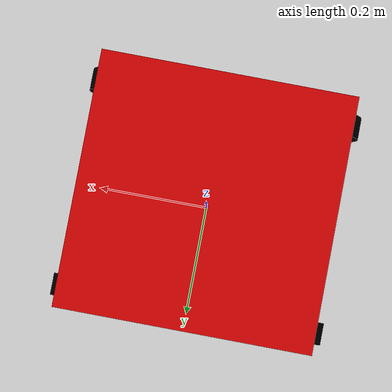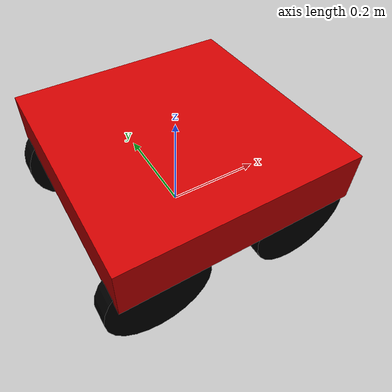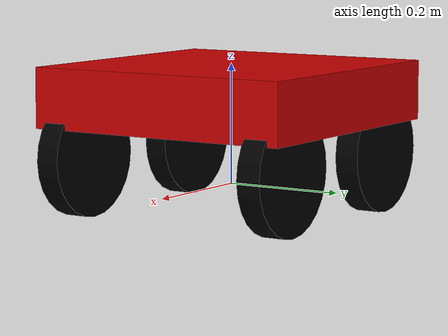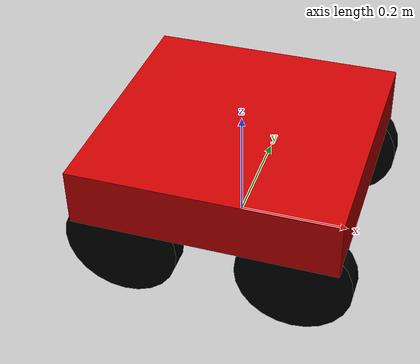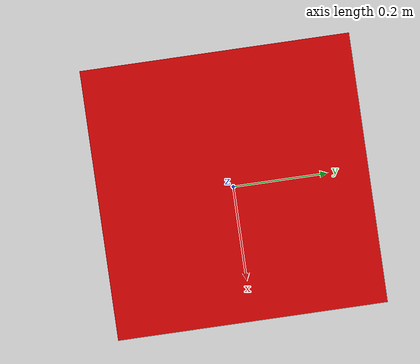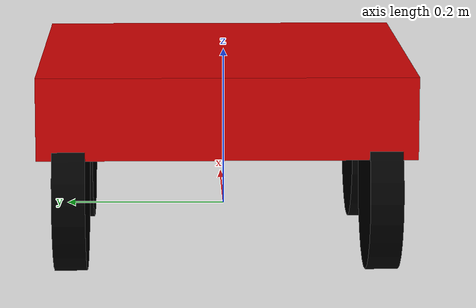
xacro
<?xml version="1.0"?>
<robot name="rover" xmlns:xacro="http://ros.org/wiki/xacro">

  <xacro:include filename="$(find my_rover)/urdf/wheel_macro.xacro"/>

  <!-- Base body -->
  <link name="base_link">
    <visual>
      <geometry><box size="0.457 0.457 0.1"/></geometry>
      <origin xyz="0 0 0.15"/>
      <material name="red">
        <color rgba="0.8 0.0 0.0 1.0"/>
      </material>
    </visual>
    <collision>
      <geometry><box size="0.457 0.457 0.1"/></geometry>
      <origin xyz="0 0 0.15"/>
    </collision>
    <inertial>
      <origin xyz="0 0 0.15"/>
      <mass value="8.0"/>
      <inertia ixx="0.0842" iyy="0.1117" izz="0.1867"
               ixy="0.0" ixz="0.0" iyz="0.0"/>
    </inertial>
  </link>

  <!-- Wheels -->
  <xacro:wheel_macro prefix="left_rear"  parent="base_link" xyz="-0.15  0.19  0.05" friction="10.0"/>
  <xacro:wheel_macro prefix="right_rear" parent="base_link" xyz="-0.15 -0.19  0.05" friction="10.0"/>
  <xacro:wheel_macro prefix="left_front" parent="base_link" xyz="0.15  0.19  0.05" friction="1.5"/>
  <xacro:wheel_macro prefix="right_front" parent="base_link" xyz="0.15 -0.19  0.05" friction="1.5"/>

  <!-- Gazebo base properties -->
  <gazebo reference="base_link">
    <mu1>10.0</mu1>
    <mu2>10.0</mu2>
    <material>Gazebo/Red</material>
  </gazebo>

  <!-- ROS2 Control -->
  <ros2_control name="GazeboSystem" type="system">
    <hardware>
      <plugin>gazebo_ros2_control/GazeboSystem</plugin>
    </hardware>

    <joint name="left_rear_wheel_joint">
      <command_interface name="velocity"/>
      <state_interface name="position"/>
      <state_interface name="velocity"/>
    </joint>

    <joint name="right_rear_wheel_joint">
      <command_interface name="velocity"/>
      <state_interface name="position"/>
      <state_interface name="velocity"/>
    </joint>
  </ros2_control>

  <!-- Gazebo ROS2 Control Plugin -->
  <gazebo>
    <plugin name="gazebo_ros2_control" filename="libgazebo_ros2_control.so">
      <robot_param>robot_description</robot_param>
      <robot_param_node>robot_state_publisher</robot_param_node>
      <parameters>$(find my_rover)/config/rover_controllers.yaml</parameters>
    </plugin>
  </gazebo>

</robot>

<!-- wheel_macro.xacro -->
<robot xmlns:xacro="http://ros.org/wiki/xacro">

  <xacro:macro name="wheel_macro" params="prefix parent xyz friction">
    <link name="${prefix}_wheel_link">
      <visual>
        <geometry>
          <cylinder radius="0.10" length="0.04"/>
        </geometry>
        <origin rpy="1.5708 0 0" xyz="0 0 0"/>
        <material name="black">
          <color rgba="0 0 0 1"/>
        </material>
      </visual>

      <collision>
        <geometry>
          <cylinder radius="0.10" length="0.04"/>
        </geometry>
        <origin rpy="1.5708 0 0" xyz="0 0 0"/>
      </collision>

      <inertial>
        <mass value="2.0"/>
        <origin xyz="0 0 0"/>
        <inertia ixx="0.01" iyy="0.01" izz="0.01"
                 ixy="0.0" ixz="0.0" iyz="0.0"/>
      </inertial>
    </link>

    <joint name="${prefix}_wheel_joint" type="continuous">
      <parent link="${parent}"/>
      <child link="${prefix}_wheel_link"/>
      <origin xyz="${xyz}" rpy="0 0 0"/>
      <axis xyz="0 1 0"/>
    </joint>

    <gazebo reference="${prefix}_wheel_link">
      <mu1>${friction}</mu1>
      <mu2>${friction}</mu2>
      <material>Gazebo/Black</material>
    </gazebo>
  </xacro:macro>

</robot>
